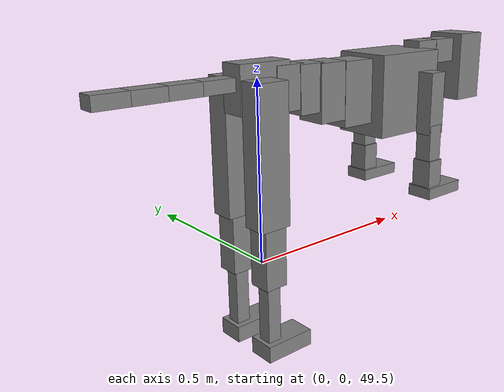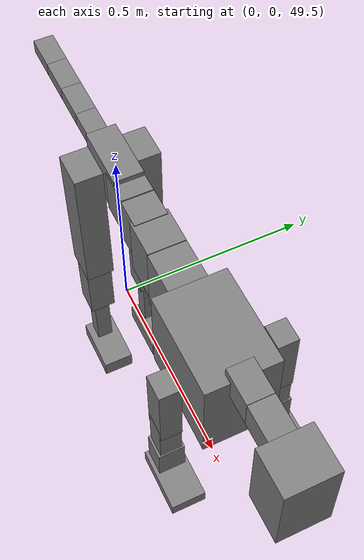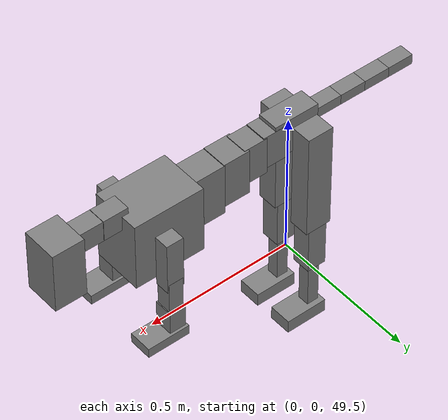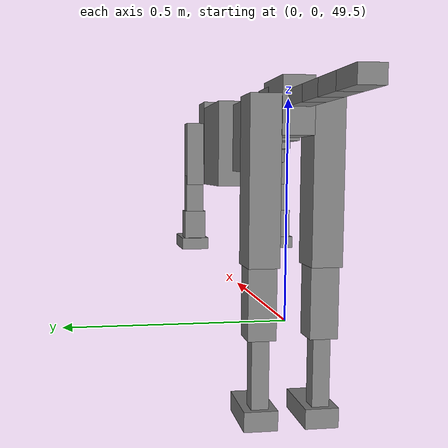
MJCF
<mujoco model="dog">

    <default>
        <joint armature="0.02" stiffness="1" damping="0.2" limited="true"/>
        <geom condim="3" friction="1 0.05 0.05" margin="0.01"/>
        <motor ctrllimited="true" ctrlrange="-1.0 1.0" forcelimited="true" gear="50"/>
    </default>

    <compiler inertiafromgeom="true" angle="radian"/>

    <option timestep="0.016" iterations="50" tolerance="1e-10" solver="Newton" jacobian="dense" cone="pyramidal"/>

    <size nconmax="20000" njmax="60000" nstack="5000000"/>
    <visual>
        <map force="0.1" zfar="30"/>
        <rgba haze="0.15 0.25 0.35 1"/>
        <quality shadowsize="2048"/>
        <global offwidth="800" offheight="800"/>
    </visual>

    <asset>
        <texture type="skybox" builtin="gradient" rgb1="0.3 0.5 0.7" rgb2="0 0 0" width="512" height="512"/>
        <texture name="texplane" type="2d" builtin="checker" rgb1=".2 .3 .4" rgb2=".1 0.15 0.2" width="512" height="512"
                 mark="cross" markrgb=".8 .8 .8"/>
        <texture name="texgeom" type="cube" builtin="flat" mark="cross" width="127" height="1278" rgb1="0.8 0.6 0.4"
                 rgb2="0.8 0.6 0.4" markrgb="1 1 1" random="0.01"/>

        <material name="matplane" reflectance="0.3" texture="texplane" texrepeat="1 1" texuniform="true"/>
        <material name="matgeom" texture="texgeom" texuniform="true" rgba="0.8 0.6 .4 1"/>
    </asset>

    <worldbody>
        <geom name="floor" pos="0 0 0" size="0 0 .25" type="plane" material="matplane" condim="3"/>

        <light directional="false" diffuse=".2 .2 .2" specular="0 0 0" pos="0 0 5" dir="0 0 -1" castshadow="false"/>
        <light mode="targetbodycom" target="torso" directional="false" diffuse=".8 .8 .8" specular="0.3 0.3 0.3"
               pos="0 0 4.0" dir="0 0 -1"/>

        <body name="root" pos="0 0 50">
            <freejoint name="root_1"/>
            <geom type="box" pos="0 0 -0.02" size="0.0774  0.0358  0.063" density="2030"/>

            <body name="spine1" pos="0.054 0 0">
                <joint name="spine1_y" axis="0 1 0" range="0 0.7" limited="true"/>
                <geom type="box" pos="0.02375 0 -0.03" size="0.04375  0.0375  0.05985" density="2030"/>

                <body name="spine2" pos="0.0612 0 0">
                    <joint name="spine2_y" axis="0 1 0" range="-0.15 0.15" limited="true"/>
                    <geom type="box" pos="0.03555  0  -0.04" size="0.04055  0.039  0.06615" density="2030"/>

                    <body name="spine3" pos="0.0730 0 0">
                        <joint name="spine3_y" axis="0 1 0" range="-0.15 0.15" limited="true"/>
                        <geom type="box" pos="0.03555  0  -0.057" size="0.04555  0.0445  0.081" density="2030"/>

                        <body name="spine4" pos="0.0780 0 0">
                            <joint name="spine4_y" axis="0 1 0" range="-0.15 0.15" limited="true"/>
                            <geom type="box" pos="0.05265  0  -0.07" size="0.05265  0.045  0.09135" density="2030"/>

                            <body name="torso" pos="0.1082 0 0">
                                <joint name="torso_y" axis="0 1 0" range="-0.15 0.15" limited="true"/>
                                <geom type="box" pos="0.11925  0  -0.085" size="0.11925  0.085  0.11745"
                                      density="2030"/>

                                <body name="neck1" pos="0.2160  0   0.0180">
                                    <joint name="neck1_y" axis="0 1 0" range="-1.2  -1" limited="true"/>
                                    <geom type="box" pos="0.0423  0  0" size="0.0423  0.03  0.036" density="2325"/>

                                    <body name="neck2" pos="0.0853  0  0">
                                        <joint name="neck2_y" axis="0 1 0" range="0.1  0" limited="true"/>
                                        <geom type="box" pos="0.0423  0  0" size="0.0423  0.03  0.036" density="2325"/>

                                        <body name="head" pos="0.0853  0  0">
                                            <joint name="head_y" axis="0 1 0" range="-0.3  -0.2" limited="true"/>
                                            <geom type="box" pos="0.0531  0  -0.055" size="0.0531  0.06  0.1044"
                                                  density="4030"/>

                                        </body>
                                    </body>
                                </body>

                                <body name="front_shoulder" pos="0.156  0   -0.0480">
                                    <joint name="front_shoulder_y" axis="0 1 0" range="-1 1.5" limited="true"/>
                                    <geom type="box" pos="0 0.13 -0.0634" size="0.0288  0.0246  0.0901" density="1158"/>
                                    <geom type="box" pos="0 -0.13 -0.0634" size="0.0288  0.0246  0.0901"
                                          density="1158"/>

                                    <body name="front_elbow" pos="0  0  -0.1268">
                                        <joint name="front_elbow_y" axis="0 1 0" range="-2 0" limited="true"/>
                                        <geom type="box" pos="0 0.13 -0.0592" size="0.0245  0.0250  0.0592"
                                              density="1081"/>
                                        <geom type="box" pos="0 -0.13 -0.0592" size="0.0245  0.0250  0.0592"
                                              density="1081"/>

                                        <body name="front_wrist" pos="0  0  -0.1185">
                                            <joint name="front_wrist_y" axis="0 1 0" range="-0.2 0" limited="true"/>
                                            <geom type="box" pos="0 0.13 -0.0412" size="0.0274  0.0305  0.0543"
                                                  density="1664"/>
                                            <geom type="box" pos="0 -0.13 -0.0412" size="0.0274  0.0305  0.0543"
                                                  density="1664"/>

                                            <body name="front_finger_end" pos="0  0  -0.0823">
                                                <joint name="front_finger_y" axis="0 1 0" range="-0.4 1"
                                                       limited="true"/>
                                                <geom type="box" pos="0.0390  0.13  -0.0016"
                                                      size="0.0714  0.0390  0.0166" density="1515"/>
                                                <geom type="box" pos="0.0390  -0.13  -0.0016"
                                                      size="0.0714  0.0390  0.0166" density="1515"/>

                                            </body>

                                        </body>
                                    </body>
                                </body>

                            </body>
                        </body>
                    </body>
                </body>
            </body>

            <body name="back_hip" pos="-0.03 0 -0.018">
                <joint name="back_hip_y" axis="0 1 0" range="-1.5 0.3" limited="true"/>
                <geom type="box" pos="0 0.07 -0.1633" size="0.0443  0.0347  0.1861" density="1154"/>
                <geom type="box" pos="0 -0.07 -0.1633" size="0.0443  0.0347  0.1861" density="1154"/>

                <body name="back_knee" pos="0  0  -0.3267">
                    <joint name="back_knee_y" axis="0 1 0" range="0 2.8" limited="true"/>
                    <geom type="box" pos="0 0.07 -0.0845" size="0.0325  0.0320  0.1000" density="1227"/>
                    <geom type="box" pos="0 -0.07 -0.0845" size="0.0325  0.0320  0.1000" density="1227"/>

                    <body name="back_ankle" pos="0  0  -0.1689">
                        <joint name="back_ankle_y" axis="0 1 0" range="-2.2 0" limited="true"/>
                        <geom type="box" pos="0 0.07 -0.0946" size="0.0199  0.0199  0.1058" density="1284"/>
                        <geom type="box" pos="0 -0.07 -0.0946" size="0.0199  0.0199  0.1058" density="1284"/>

                        <body name="back_toe_end" pos="0  0  -0.1891">
                            <joint name="back_toe_y" axis="0 1 0" range="-0.4 1" limited="true"/>
                            <geom type="box" pos="0.0386  0.07  -0.0079" size="0.0708  0.0386  0.0229" density="1515"/>
                            <geom type="box" pos="0.0386  -0.07  -0.0079" size="0.0708  0.0386  0.0229" density="1515"/>

                        </body>
                    </body>
                </body>
            </body>

            <body name="tail1" pos="-0.074 0 -0.006">
                <joint name="tail1_y" axis="0 1 0" range="-0.2 0.2" limited="true"/>
                <geom type="box" pos="-0.0536  0  0" size="0.045  0.025  0.0175" density="1587"/>

                <body name="tail2" pos="-0.09 0 0">
                    <joint name="tail2_y" axis="0 1 0" range="-0.2 0.2" limited="true"/>
                    <geom type="box" pos="-0.0536  0  0" size="0.045  0.025  0.0175" density="1587"/>

                    <body name="tail3" pos="-0.09 0 0">
                        <joint name="tail3_y" axis="0 1 0" range="-0.2 0.2" limited="true"/>
                        <geom type="box" pos="-0.0536  0  0" size="0.045  0.025  0.0175" density="1587"/>

                        <body name="tail4" pos="-0.09 0 0">
                            <joint name="tail4_y" axis="0 1 0" range="-0.2 0.2" limited="true"/>
                            <geom type="box" pos="-0.0536  0  0" size="0.045  0.025  0.0175" density="1587"/>

                        </body>
                    </body>
                </body>
            </body>
        </body>
    </worldbody>

    <actuator>
        <motor joint="spine1_y" forcerange="-150 150     "/>
        <motor joint="spine2_y" forcerange="-150 150     "/>
        <motor joint="spine3_y" forcerange="-150 150     "/>
        <motor joint="spine4_y" forcerange="-150 150     "/>
        <motor joint="torso_y" forcerange="-150 150     "/>
        <motor joint="neck1_y" forcerange="-100 100       "/>
        <motor joint="neck2_y" forcerange="-100 100       "/>
        <motor joint="head_y" forcerange="-150 150       "/>
        <motor joint="front_shoulder_y" forcerange="-131.70 132.39"/>
        <motor joint="front_elbow_y" forcerange="-113.69 168.30"/>
        <motor joint="front_wrist_y" forcerange="-133.38 110.58"/>
        <motor joint="front_finger_y" forcerange="-75.53 92.23"/>
        <motor joint="back_hip_y" forcerange="-386.02 277.11"/>
        <motor joint="back_knee_y" forcerange="-377.34 288.13"/>
        <motor joint="back_angle_y" forcerange="-92.94 125.42"/>
        <motor joint="back_toe_y" forcerange="-89.48 139.37"/>
        <motor joint="tail1_y" forcerange="-50 50     "/>
        <motor joint="tail2_y" forcerange="-50 50     "/>
        <motor joint="tail3_y" forcerange="-50 50     "/>
        <motor joint="tail4_y" forcerange="-50 50     "/>
    </actuator>
</mujoco>
